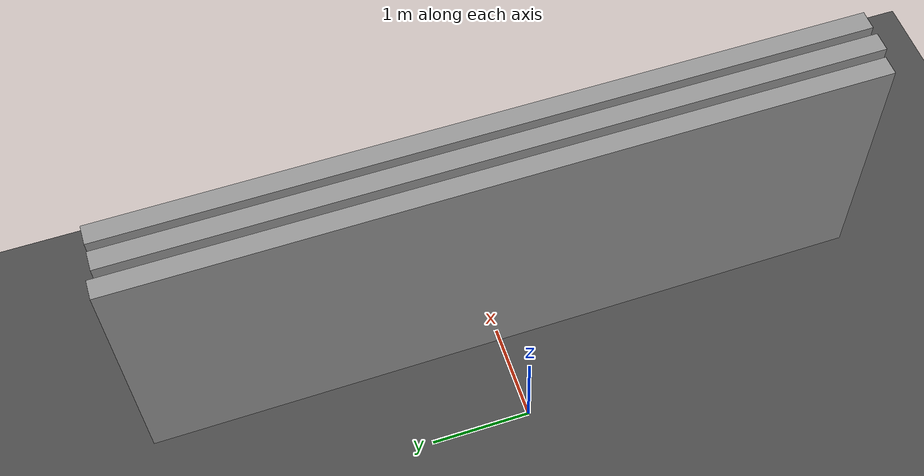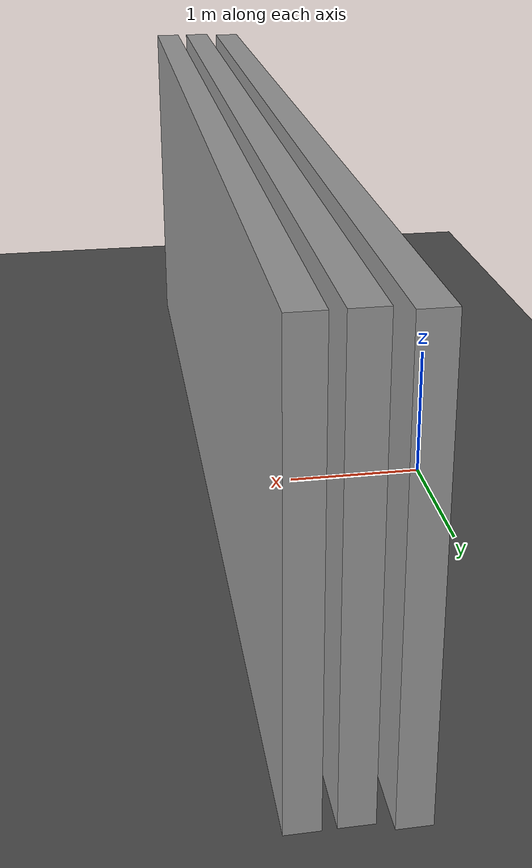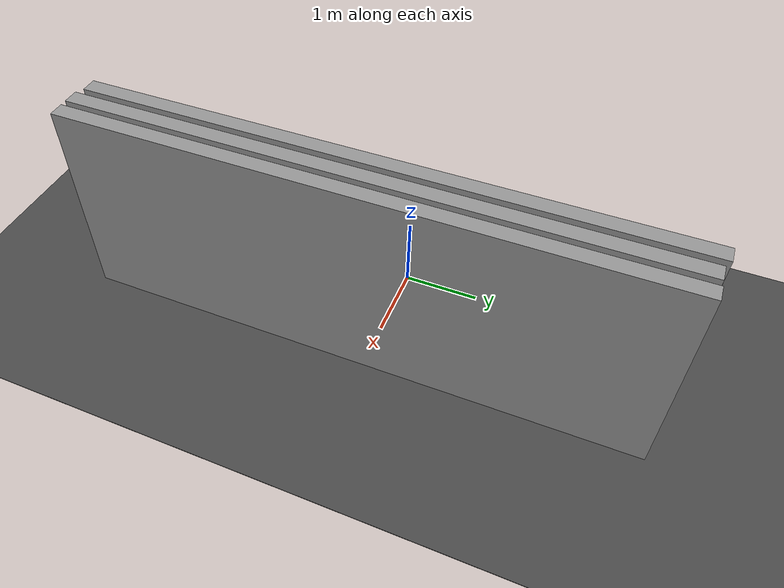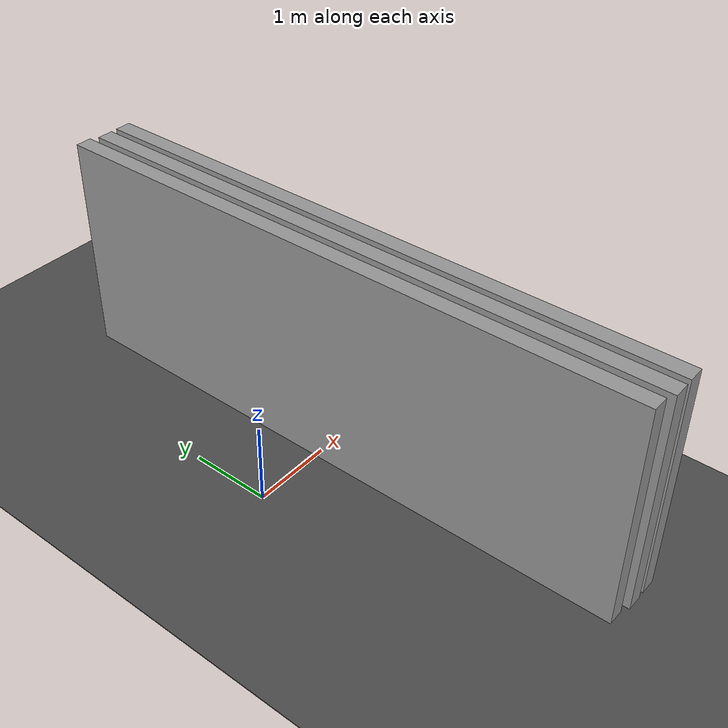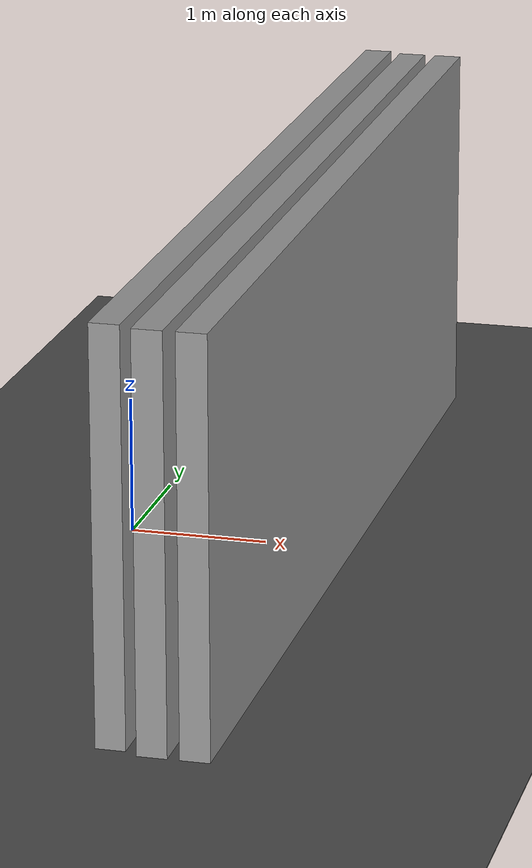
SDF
<sdf version="1.7">
 <world name="default">
  <scene>
   <sky><clouds><speed>20</speed></clouds></sky>
   <ambient>0.4 0.4 0.4 1</ambient>
   <background>0.7 0.7 0.7 1</background>
   <shadows>1</shadows>
  </scene>
  <light name="sun" type="directional">
   <pose>0 0 10 0 -0 0</pose>
   <diffuse>0.8 0.8 0.8 1</diffuse>
   <specular>0.1 0.1 0.1 1</specular>
   <attenuation>
    <range>1000</range>
    <constant>0.9</constant>
    <linear>0.01</linear>
    <quadratic>0.001</quadratic>
   </attenuation>
   <direction>-0.5 0.5 -1</direction>
   <spot><inner_angle>0</inner_angle><outer_angle>0</outer_angle><falloff>0</falloff></spot>
  </light>
  <model name="asphalt_plane">
   <pose>-0.201839 -0.10124 0 0 -0 0</pose>
   <static>1</static>
   <link name="link">
    <collision name="collision"><geometry><box><size>10000 10000 0.01</size></box></geometry></collision>
    <visual name="visual">
     <cast_shadows>0</cast_shadows>
     <geometry><box><size>100 100 0.01</size></box></geometry>
     <material>
      <script>
       <uri>file:///home/jtorde/Desktop/ws/src/acl-ros-extra-v2/acl_sim/urdf/grass/materials/scripts</uri>
       <uri>file:///home/jtorde/Desktop/ws/src/acl-ros-extra-v2/acl_sim/urdf/grass/materials/textures</uri>
       <name>vrc/asphalt</name>
      </script>
     </material>
    </visual>
   </link>
  </model>
  <gravity>0 0 -9.8</gravity>
  <magnetic_field>6e-06 2.3e-05 -4.2e-05</magnetic_field>
  <atmosphere type="adiabatic"/>
  <physics name="default_physics" default="0" type="ode">
   <max_step_size>0.001</max_step_size>
   <real_time_factor>1</real_time_factor>
   <real_time_update_rate>1000</real_time_update_rate>
  </physics>
  <spherical_coordinates>
   <surface_model>EARTH_WGS84</surface_model>
   <latitude_deg>0</latitude_deg>
   <longitude_deg>0</longitude_deg>
   <elevation>0</elevation>
   <heading_deg>0</heading_deg>
  </spherical_coordinates>
  <light name="user_directional_light_0" type="directional">
   <pose>34.9855 -1.80031 1 0 -0 0</pose>
   <diffuse>0.5 0.5 0.5 1</diffuse>
   <specular>0.1 0.1 0.1 1</specular>
   <direction>0.1 0.1 -0.9</direction>
   <attenuation>
    <range>20</range>
    <constant>0.5</constant>
    <linear>0.01</linear>
    <quadratic>0.001</quadratic>
   </attenuation>
   <spot><inner_angle>0</inner_angle><outer_angle>0</outer_angle><falloff>0</falloff></spot>
  </light>
  <light name="user_directional_light_1" type="directional">
   <pose>65.0809 -34.7744 1 0 -0 0</pose>
   <diffuse>0.5 0.5 0.5 1</diffuse>
   <specular>0.1 0.1 0.1 1</specular>
   <direction>0.1 0.1 -0.9</direction>
   <attenuation>
    <range>20</range>
    <constant>0.5</constant>
    <linear>0.01</linear>
    <quadratic>0.001</quadratic>
   </attenuation>
   <spot><inner_angle>0</inner_angle><outer_angle>0</outer_angle><falloff>0</falloff></spot>
  </light>
  <light name="user_directional_light_2" type="directional">
   <pose>27.7796 -25.3494 1 0 -0 0</pose>
   <diffuse>0.5 0.5 0.5 1</diffuse>
   <specular>0.1 0.1 0.1 1</specular>
   <direction>0.1 0.1 -0.9</direction>
   <attenuation>
    <range>20</range>
    <constant>0.5</constant>
    <linear>0.01</linear>
    <quadratic>0.001</quadratic>
   </attenuation>
   <spot><inner_angle>0</inner_angle><outer_angle>0</outer_angle><falloff>0</falloff></spot>
  </light>
  <model name="grey_wall_clone">
   <static>1</static>
   <link name="link">
    <pose>0 0 1.4 0 -0 0</pose>
    <collision name="collision"><geometry><box><size>7.5 0.2 2.8</size></box></geometry></collision>
    <visual name="visual">
     <cast_shadows>0</cast_shadows>
     <geometry><box><size>7.5 0.2 2.8</size></box></geometry>
     <material>
      <script>
       <uri>model://grey_wall/materials/scripts</uri>
       <uri>model://grey_wall/materials/textures</uri>
       <name>vrc/grey_wall</name>
      </script>
     </material>
    </visual>
   </link>
   <pose>0.990612 -0.12541 0 0 0 -1.56755</pose>
  </model>
  <model name="grey_wall_clone_clone">
   <static>1</static>
   <link name="link">
    <pose>0 0 1.4 0 -0 0</pose>
    <collision name="collision"><geometry><box><size>7.5 0.2 2.8</size></box></geometry></collision>
    <visual name="visual">
     <cast_shadows>0</cast_shadows>
     <geometry><box><size>7.5 0.2 2.8</size></box></geometry>
     <material>
      <script>
       <uri>model://grey_wall/materials/scripts</uri>
       <uri>model://grey_wall/materials/textures</uri>
       <name>vrc/grey_wall</name>
      </script>
     </material>
    </visual>
   </link>
   <pose>1.55472 -0.176143 0 0 0 -1.56755</pose>
  </model>
  <model name="grey_wall_clone_clone_clone">
   <static>1</static>
   <link name="link">
    <pose>0 0 1.4 0 -0 0</pose>
    <collision name="collision"><geometry><box><size>7.5 0.2 2.8</size></box></geometry></collision>
    <visual name="visual">
     <cast_shadows>0</cast_shadows>
     <geometry><box><size>7.5 0.2 2.8</size></box></geometry>
     <material>
      <script>
       <uri>model://grey_wall/materials/scripts</uri>
       <uri>model://grey_wall/materials/textures</uri>
       <name>vrc/grey_wall</name>
      </script>
     </material>
    </visual>
   </link>
   <pose>1.27558 -0.17927 0 0 0 -1.56755</pose>
  </model>
  <plugin name="ros_interface_plugin" filename="librotors_gazebo_ros_interface_plugin.so"/>
 </world>
</sdf>
